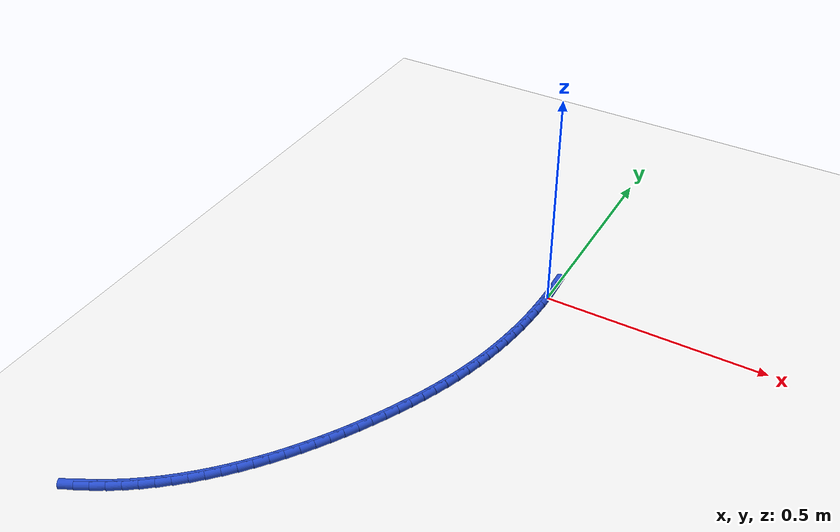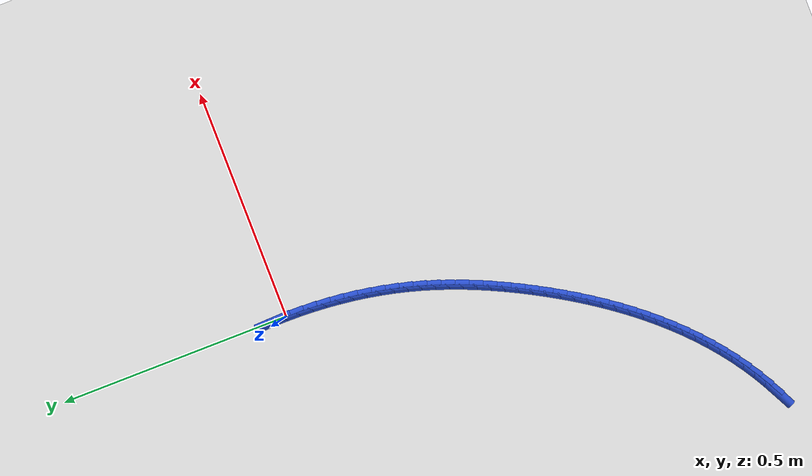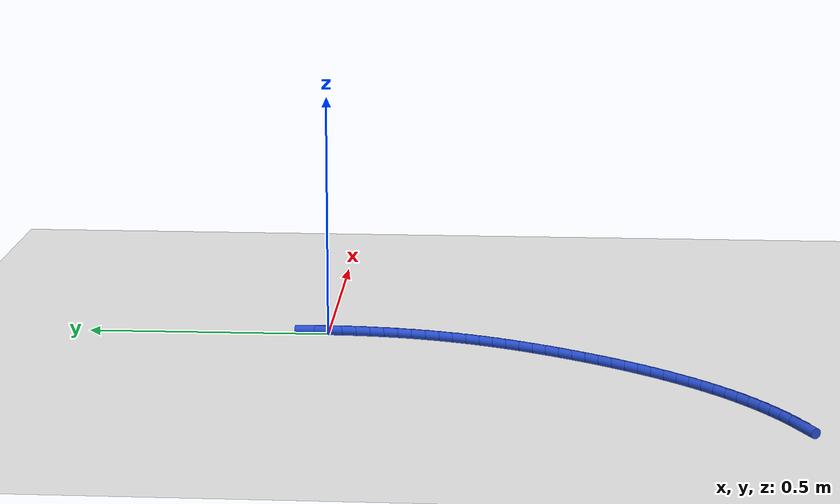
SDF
<sdf version="1.6">
 <world name="default">
  <model name="ground_plane">
   <static>1</static>
   <link name="link">
    <collision name="collision">
     <geometry><plane><normal>0 0 1</normal><size>100 100</size></plane></geometry>
     <surface><friction><ode><mu>100</mu><mu2>50</mu2></ode></friction></surface>
    </collision>
    <visual name="visual">
     <cast_shadows>0</cast_shadows>
     <geometry><plane><normal>0 0 1</normal><size>100 100</size></plane></geometry>
     <material>
      <script><uri>file://media/materials/scripts/gazebo.material</uri><name>Gazebo/WhiteGlow</name></script>
     </material>
    </visual>
   </link>
  </model>
  <model name="line">
   <link name="link_0">
    <pose>4.7704895589362195e-18 -6.245004513516506e-17 0.01 0 1.57 -1.5629209023628228</pose>
    <collision name="collision">
     <geometry><cylinder><radius>0.01</radius><length>0.08</length></cylinder></geometry>
    </collision>
    <visual name="visual">
     <material>
      <script><name>Gazebo/Blue</name><uri>file://media/materials/scripts/gazebo.material</uri></script>
     </material>
     <geometry><cylinder><radius>0.01</radius><length>0.08</length></cylinder></geometry>
    </visual>
   </link>
   <link name="link_1">
    <pose>-0.00023221748244270946 0.02948573547209938 0.01 0 1.57 -1.5352980355286454</pose>
    <collision name="collision">
     <geometry><cylinder><radius>0.01</radius><length>0.08</length></cylinder></geometry>
    </collision>
    <visual name="visual">
     <material>
      <script><name>Gazebo/Blue</name><uri>file://media/materials/scripts/gazebo.material</uri></script>
     </material>
     <geometry><cylinder><radius>0.01</radius><length>0.08</length></cylinder></geometry>
    </visual>
   </link>
   <link name="link_203">
    <pose>-0.5191406382340041 -0.9023761727971432 0.01 0 1.57 0.4756825161073883</pose>
    <collision name="collision">
     <geometry><cylinder><radius>0.01</radius><length>0.08</length></cylinder></geometry>
    </collision>
    <visual name="visual">
     <material>
      <script><name>Gazebo/Blue</name><uri>file://media/materials/scripts/gazebo.material</uri></script>
     </material>
     <geometry><cylinder><radius>0.01</radius><length>0.08</length></cylinder></geometry>
    </visual>
   </link>
   <link name="link_204">
    <pose>-0.49299896347881883 -0.8889096696321455 0.01 0 1.57 0.520637159264825</pose>
    <collision name="collision">
     <geometry><cylinder><radius>0.01</radius><length>0.08</length></cylinder></geometry>
    </collision>
    <visual name="visual">
     <material>
      <script><name>Gazebo/Blue</name><uri>file://media/materials/scripts/gazebo.material</uri></script>
     </material>
     <geometry><cylinder><radius>0.01</radius><length>0.08</length></cylinder></geometry>
    </visual>
   </link>
   <link name="link_205">
    <pose>-0.46752507127768994 -0.8743027315584962 0.01 0 1.57 0.5644244457727623</pose>
    <collision name="collision">
     <geometry><cylinder><radius>0.01</radius><length>0.08</length></cylinder></geometry>
    </collision>
    <visual name="visual">
     <material>
      <script><name>Gazebo/Blue</name><uri>file://media/materials/scripts/gazebo.material</uri></script>
     </material>
     <geometry><cylinder><radius>0.01</radius><length>0.08</length></cylinder></geometry>
    </visual>
   </link>
   <link name="link_206">
    <pose>-0.44275594363153825 -0.8586206472361312 0.01 0 1.57 0.606700884267888</pose>
    <collision name="collision">
     <geometry><cylinder><radius>0.01</radius><length>0.08</length></cylinder></geometry>
    </collision>
    <visual name="visual">
     <material>
      <script><name>Gazebo/Blue</name><uri>file://media/materials/scripts/gazebo.material</uri></script>
     </material>
     <geometry><cylinder><radius>0.01</radius><length>0.08</length></cylinder></geometry>
    </visual>
   </link>
   <link name="link_207">
    <pose>-0.418686016146907 -0.8419156494291485 0.01 0 1.57 0.6473841321847104</pose>
    <collision name="collision">
     <geometry><cylinder><radius>0.01</radius><length>0.08</length></cylinder></geometry>
    </collision>
    <visual name="visual">
     <material>
      <script><name>Gazebo/Blue</name><uri>file://media/materials/scripts/gazebo.material</uri></script>
     </material>
     <geometry><cylinder><radius>0.01</radius><length>0.08</length></cylinder></geometry>
    </visual>
   </link>
   <link name="link_208">
    <pose>-0.3953070184815956 -0.8242391405472657 0.01 0 1.57 0.6864386919878595</pose>
    <collision name="collision">
     <geometry><cylinder><radius>0.01</radius><length>0.08</length></cylinder></geometry>
    </collision>
    <visual name="visual">
     <material>
      <script><name>Gazebo/Blue</name><uri>file://media/materials/scripts/gazebo.material</uri></script>
     </material>
     <geometry><cylinder><radius>0.01</radius><length>0.08</length></cylinder></geometry>
    </visual>
   </link>
   <link name="link_209">
    <pose>-0.37261068029340494 -0.8056425230002009 0.01 0 1.57 0.7238516668815669</pose>
    <collision name="collision">
     <geometry><cylinder><radius>0.01</radius><length>0.08</length></cylinder></geometry>
    </collision>
    <visual name="visual">
     <material>
      <script><name>Gazebo/Blue</name><uri>file://media/materials/scripts/gazebo.material</uri></script>
     </material>
     <geometry><cylinder><radius>0.01</radius><length>0.08</length></cylinder></geometry>
    </visual>
   </link>
   <link name="link_210">
    <pose>-0.35058873124013434 -0.7861771991976725 0.01 0 1.57 0.7596295563792244</pose>
    <collision name="collision">
     <geometry><cylinder><radius>0.01</radius><length>0.08</length></cylinder></geometry>
    </collision>
    <visual name="visual">
     <material>
      <script><name>Gazebo/Blue</name><uri>file://media/materials/scripts/gazebo.material</uri></script>
     </material>
     <geometry><cylinder><radius>0.01</radius><length>0.08</length></cylinder></geometry>
    </visual>
   </link>
   <link name="link_211">
    <pose>-0.3292329009795838 -0.765894571549398 0.01 0 1.57 0.7937950096976893</pose>
    <collision name="collision">
     <geometry><cylinder><radius>0.01</radius><length>0.08</length></cylinder></geometry>
    </collision>
    <visual name="visual">
     <material>
      <script><name>Gazebo/Blue</name><uri>file://media/materials/scripts/gazebo.material</uri></script>
     </material>
     <geometry><cylinder><radius>0.01</radius><length>0.08</length></cylinder></geometry>
    </visual>
   </link>
   <link name="link_212">
    <pose>-0.30853491916955317 -0.7448460424650954 0.01 0 1.57 0.8263837059470992</pose>
    <collision name="collision">
     <geometry><cylinder><radius>0.01</radius><length>0.08</length></cylinder></geometry>
    </collision>
    <visual name="visual">
     <material>
      <script><name>Gazebo/Blue</name><uri>file://media/materials/scripts/gazebo.material</uri></script>
     </material>
     <geometry><cylinder><radius>0.01</radius><length>0.08</length></cylinder></geometry>
    </visual>
   </link>
   <link name="link_213">
    <pose>-0.28848651546784226 -0.7230830143544827 0.01 0 1.57 0.857441476710519</pose>
    <collision name="collision">
     <geometry><cylinder><radius>0.01</radius><length>0.08</length></cylinder></geometry>
    </collision>
    <visual name="visual">
     <material>
      <script><name>Gazebo/Blue</name><uri>file://media/materials/scripts/gazebo.material</uri></script>
     </material>
     <geometry><cylinder><radius>0.01</radius><length>0.08</length></cylinder></geometry>
    </visual>
   </link>
   <link name="link_214">
    <pose>-0.269079419532251 -0.7006568896272778 0.01 0 1.57 0.8870217398218666</pose>
    <collision name="collision">
     <geometry><cylinder><radius>0.01</radius><length>0.08</length></cylinder></geometry>
    </collision>
    <visual name="visual">
     <material>
      <script><name>Gazebo/Blue</name><uri>file://media/materials/scripts/gazebo.material</uri></script>
     </material>
     <geometry><cylinder><radius>0.01</radius><length>0.08</length></cylinder></geometry>
    </visual>
   </link>
   <link name="link_215">
    <pose>-0.2503053610205787 -0.6776190706931975 0.01 0 1.57 0.915183275478755</pose>
    <collision name="collision">
     <geometry><cylinder><radius>0.01</radius><length>0.08</length></cylinder></geometry>
    </collision>
    <visual name="visual">
     <material>
      <script><name>Gazebo/Blue</name><uri>file://media/materials/scripts/gazebo.material</uri></script>
     </material>
     <geometry><cylinder><radius>0.01</radius><length>0.08</length></cylinder></geometry>
    </visual>
   </link>
   <link name="link_216">
    <pose>-0.2321560695906264 -0.6540209599619615 0.01 0 1.57 0.9419883477668329</pose>
    <collision name="collision">
     <geometry><cylinder><radius>0.01</radius><length>0.08</length></cylinder></geometry>
    </collision>
    <visual name="visual">
     <material>
      <script><name>Gazebo/Blue</name><uri>file://media/materials/scripts/gazebo.material</uri></script>
     </material>
     <geometry><cylinder><radius>0.01</radius><length>0.08</length></cylinder></geometry>
    </visual>
   </link>
   <link name="link_217">
    <pose>-0.21462327490019328 -0.629913959843287 0.01 0 1.57 0.9675011554336315</pose>
    <collision name="collision">
     <geometry><cylinder><radius>0.01</radius><length>0.08</length></cylinder></geometry>
    </collision>
    <visual name="visual">
     <material>
      <script><name>Gazebo/Blue</name><uri>file://media/materials/scripts/gazebo.material</uri></script>
     </material>
     <geometry><cylinder><radius>0.01</radius><length>0.08</length></cylinder></geometry>
    </visual>
   </link>
   <link name="link_218">
    <pose>-0.19769870660707936 -0.6053494727468919 0.01 0 1.57 0.9917865838860034</pose>
    <collision name="collision">
     <geometry><cylinder><radius>0.01</radius><length>0.08</length></cylinder></geometry>
    </collision>
    <visual name="visual">
     <material>
      <script><name>Gazebo/Blue</name><uri>file://media/materials/scripts/gazebo.material</uri></script>
     </material>
     <geometry><cylinder><radius>0.01</radius><length>0.08</length></cylinder></geometry>
    </visual>
   </link>
   <link name="link_219">
    <pose>-0.18137409436908436 -0.5803789010824938 0.01 0 1.57 1.0149092242445472</pose>
    <collision name="collision">
     <geometry><cylinder><radius>0.01</radius><length>0.08</length></cylinder></geometry>
    </collision>
    <visual name="visual">
     <material>
      <script><name>Gazebo/Blue</name><uri>file://media/materials/scripts/gazebo.material</uri></script>
     </material>
     <geometry><cylinder><radius>0.01</radius><length>0.08</length></cylinder></geometry>
    </visual>
   </link>
   <link name="link_220">
    <pose>-0.16564116784400837 -0.5550536472598112 0.01 0 1.57 1.0369326233012017</pose>
    <collision name="collision">
     <geometry><cylinder><radius>0.01</radius><length>0.08</length></cylinder></geometry>
    </collision>
    <visual name="visual">
     <material>
      <script><name>Gazebo/Blue</name><uri>file://media/materials/scripts/gazebo.material</uri></script>
     </material>
     <geometry><cylinder><radius>0.01</radius><length>0.08</length></cylinder></geometry>
    </visual>
   </link>
   <link name="link_221">
    <pose>-0.15049165668965112 -0.5294251136885615 0.01 0 1.57 1.0579187290496381</pose>
    <collision name="collision">
     <geometry><cylinder><radius>0.01</radius><length>0.08</length></cylinder></geometry>
    </collision>
    <visual name="visual">
     <material>
      <script><name>Gazebo/Blue</name><uri>file://media/materials/scripts/gazebo.material</uri></script>
     </material>
     <geometry><cylinder><radius>0.01</radius><length>0.08</length></cylinder></geometry>
    </visual>
   </link>
   <link name="link_222">
    <pose>-0.13591729056381252 -0.5035447027784629 0.01 0 1.57 1.078178299026233</pose>
    <collision name="collision">
     <geometry><cylinder><radius>0.01</radius><length>0.08</length></cylinder></geometry>
    </collision>
    <visual name="visual">
     <material>
      <script><name>Gazebo/Blue</name><uri>file://media/materials/scripts/gazebo.material</uri></script>
     </material>
     <geometry><cylinder><radius>0.01</radius><length>0.08</length></cylinder></geometry>
    </visual>
   </link>
   <link name="link_223">
    <pose>-0.12191473317219549 -0.47745730987578455 0.01 0 1.57 1.099273048779533</pose>
    <collision name="collision">
     <geometry><cylinder><radius>0.01</radius><length>0.08</length></cylinder></geometry>
    </collision>
    <visual name="visual">
     <material>
      <script><name>Gazebo/Blue</name><uri>file://media/materials/scripts/gazebo.material</uri></script>
     </material>
     <geometry><cylinder><radius>0.01</radius><length>0.08</length></cylinder></geometry>
    </visual>
   </link>
   <link name="link_224">
    <pose>-0.10851048662415774 -0.4511684791916727 0.01 0 1.57 1.1217886080199277</pose>
    <collision name="collision">
     <geometry><cylinder><radius>0.01</radius><length>0.08</length></cylinder></geometry>
    </collision>
    <visual name="visual">
     <material>
      <script><name>Gazebo/Blue</name><uri>file://media/materials/scripts/gazebo.material</uri></script>
     </material>
     <geometry><cylinder><radius>0.01</radius><length>0.08</length></cylinder></geometry>
    </visual>
   </link>
   <link name="link_225">
    <pose>-0.09574221236110032 -0.42466903791727645 0.01 0 1.57 1.1457361081764372</pose>
    <collision name="collision">
     <geometry><cylinder><radius>0.01</radius><length>0.08</length></cylinder></geometry>
    </collision>
    <visual name="visual">
     <material>
      <script><name>Gazebo/Blue</name><uri>file://media/materials/scripts/gazebo.material</uri></script>
     </material>
     <geometry><cylinder><radius>0.01</radius><length>0.08</length></cylinder></geometry>
    </visual>
   </link>
   <link name="link_226">
    <pose>-0.08364759122562354 -0.3979497876572831 0.01 0 1.57 1.1711191570165576</pose>
    <collision name="collision">
     <geometry><cylinder><radius>0.01</radius><length>0.08</length></cylinder></geometry>
    </collision>
    <visual name="visual">
     <material>
      <script><name>Gazebo/Blue</name><uri>file://media/materials/scripts/gazebo.material</uri></script>
     </material>
     <geometry><cylinder><radius>0.01</radius><length>0.08</length></cylinder></geometry>
    </visual>
   </link>
   <link name="link_227">
    <pose>-0.07226430406032774 -0.3710015300163798 0.01 0 1.57 1.1979333026456553</pose>
    <collision name="collision">
     <geometry><cylinder><radius>0.01</radius><length>0.08</length></cylinder></geometry>
    </collision>
    <visual name="visual">
     <material>
      <script><name>Gazebo/Blue</name><uri>file://media/materials/scripts/gazebo.material</uri></script>
     </material>
     <geometry><cylinder><radius>0.01</radius><length>0.08</length></cylinder></geometry>
    </visual>
   </link>
   <link name="link_228">
    <pose>-0.061630031707813275 -0.34381506659925376 0.01 0 1.57 1.226164456826208</pose>
    <collision name="collision">
     <geometry><cylinder><radius>0.01</radius><length>0.08</length></cylinder></geometry>
    </collision>
    <visual name="visual">
     <material>
      <script><name>Gazebo/Blue</name><uri>file://media/materials/scripts/gazebo.material</uri></script>
     </material>
     <geometry><cylinder><radius>0.01</radius><length>0.08</length></cylinder></geometry>
    </visual>
   </link>
   <link name="link_229">
    <pose>-0.051782455010680496 -0.3163811990105922 0.01 0 1.57 1.2557873194625937</pose>
    <collision name="collision">
     <geometry><cylinder><radius>0.01</radius><length>0.08</length></cylinder></geometry>
    </collision>
    <visual name="visual">
     <material>
      <script><name>Gazebo/Blue</name><uri>file://media/materials/scripts/gazebo.material</uri></script>
     </material>
     <geometry><cylinder><radius>0.01</radius><length>0.08</length></cylinder></geometry>
    </visual>
   </link>
   <link name="link_230">
    <pose>-0.0427592548115295 -0.28869072885508157 0.01 0 1.57 1.2867638768348095</pose>
    <collision name="collision">
     <geometry><cylinder><radius>0.01</radius><length>0.08</length></cylinder></geometry>
    </collision>
    <visual name="visual">
     <material>
      <script><name>Gazebo/Blue</name><uri>file://media/materials/scripts/gazebo.material</uri></script>
     </material>
     <geometry><cylinder><radius>0.01</radius><length>0.08</length></cylinder></geometry>
    </visual>
   </link>
   <link name="link_231">
    <pose>-0.034598111952961134 -0.26073445773741066 0.01 0 1.57 1.3187675030723396</pose>
    <collision name="collision">
     <geometry><cylinder><radius>0.01</radius><length>0.08</length></cylinder></geometry>
    </collision>
    <visual name="visual">
     <material>
      <script><name>Gazebo/Blue</name><uri>file://media/materials/scripts/gazebo.material</uri></script>
     </material>
     <geometry><cylinder><radius>0.01</radius><length>0.08</length></cylinder></geometry>
    </visual>
   </link>
   <link name="link_232">
    <pose>-0.027329714935003125 -0.2325081277083887 0.01 0 1.57 1.35041431230221</pose>
    <collision name="collision">
     <geometry><cylinder><radius>0.01</radius><length>0.08</length></cylinder></geometry>
    </collision>
    <visual name="visual">
     <material>
      <script><name>Gazebo/Blue</name><uri>file://media/materials/scripts/gazebo.material</uri></script>
     </material>
     <geometry><cylinder><radius>0.01</radius><length>0.08</length></cylinder></geometry>
    </visual>
   </link>
   <link name="link_233">
    <pose>-0.020950418151785725 -0.20403173961315849 0.01 0 1.57 1.381301277410608</pose>
    <collision name="collision">
     <geometry><cylinder><radius>0.01</radius><length>0.08</length></cylinder></geometry>
    </collision>
    <visual name="visual">
     <material>
      <script><name>Gazebo/Blue</name><uri>file://media/materials/scripts/gazebo.material</uri></script>
     </material>
     <geometry><cylinder><radius>0.01</radius><length>0.08</length></cylinder></geometry>
    </visual>
   </link>
   <link name="link_234">
    <pose>-0.015446055008080505 -0.17533272791164192 0.01 0 1.57 1.4114484545166397</pose>
    <collision name="collision">
     <geometry><cylinder><radius>0.01</radius><length>0.08</length></cylinder></geometry>
    </collision>
    <visual name="visual">
     <material>
      <script><name>Gazebo/Blue</name><uri>file://media/materials/scripts/gazebo.material</uri></script>
     </material>
     <geometry><cylinder><radius>0.01</radius><length>0.08</length></cylinder></geometry>
    </visual>
   </link>
   <link name="link_235">
    <pose>-0.01080245617218023 -0.14643852899722234 0.01 0 1.57 1.4408801441785772</pose>
    <collision name="collision">
     <geometry><cylinder><radius>0.01</radius><length>0.08</length></cylinder></geometry>
    </collision>
    <visual name="visual">
     <material>
      <script><name>Gazebo/Blue</name><uri>file://media/materials/scripts/gazebo.material</uri></script>
     </material>
     <geometry><cylinder><radius>0.01</radius><length>0.08</length></cylinder></geometry>
    </visual>
   </link>
   <link name="link_236">
    <pose>-0.007005452312377672 -0.11737657926328329 0.01 0 1.57 1.4696241594730828</pose>
    <collision name="collision">
     <geometry><cylinder><radius>0.01</radius><length>0.08</length></cylinder></geometry>
    </collision>
    <visual name="visual">
     <material>
      <script><name>Gazebo/Blue</name><uri>file://media/materials/scripts/gazebo.material</uri></script>
     </material>
     <geometry><cylinder><radius>0.01</radius><length>0.08</length></cylinder></geometry>
    </visual>
   </link>
   <link name="link_237">
    <pose>-0.004040874096965604 -0.0881743151032082 0.01 0 1.57 1.497711261969733</pose>
    <collision name="collision">
     <geometry><cylinder><radius>0.01</radius><length>0.08</length></cylinder></geometry>
    </collision>
    <visual name="visual">
     <material>
      <script><name>Gazebo/Blue</name><uri>file://media/materials/scripts/gazebo.material</uri></script>
     </material>
     <geometry><cylinder><radius>0.01</radius><length>0.08</length></cylinder></geometry>
    </visual>
   </link>
   <link name="link_238">
    <pose>-0.0018945521942367424 -0.05885917291037971 0.01 0 1.57 1.525174662065856</pose>
    <collision name="collision">
     <geometry><cylinder><radius>0.01</radius><length>0.08</length></cylinder></geometry>
    </collision>
    <visual name="visual">
     <material>
      <script><name>Gazebo/Blue</name><uri>file://media/materials/scripts/gazebo.material</uri></script>
     </material>
     <geometry><cylinder><radius>0.01</radius><length>0.08</length></cylinder></geometry>
    </visual>
   </link>
   <link name="link_239">
    <pose>-0.0005523172724839756 -0.029458589078182863 0.01 0 1.57 1.5520495848069078</pose>
    <collision name="collision">
     <geometry><cylinder><radius>0.01</radius><length>0.08</length></cylinder></geometry>
    </collision>
    <visual name="visual">
     <material>
      <script><name>Gazebo/Blue</name><uri>file://media/materials/scripts/gazebo.material</uri></script>
     </material>
     <geometry><cylinder><radius>0.01</radius><length>0.08</length></cylinder></geometry>
    </visual>
   </link>
   <link name="link_240">
    <pose>-2.168404344971009e-18 -3.122502256758253e-16 0.01 0 1.57 -1.5632197533887493</pose>
    <collision name="collision">
     <geometry><cylinder><radius>0.01</radius><length>0.08</length></cylinder></geometry>
    </collision>
    <visual name="visual">
     <material>
      <script><name>Gazebo/Blue</name><uri>file://media/materials/scripts/gazebo.material</uri></script>
     </material>
     <geometry><cylinder><radius>0.01</radius><length>0.08</length></cylinder></geometry>
    </visual>
   </link>
  </model>
 </world>
</sdf>
